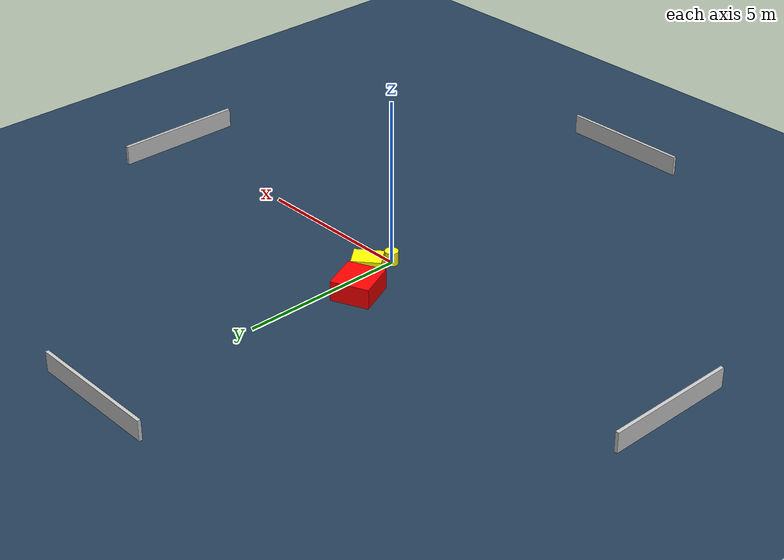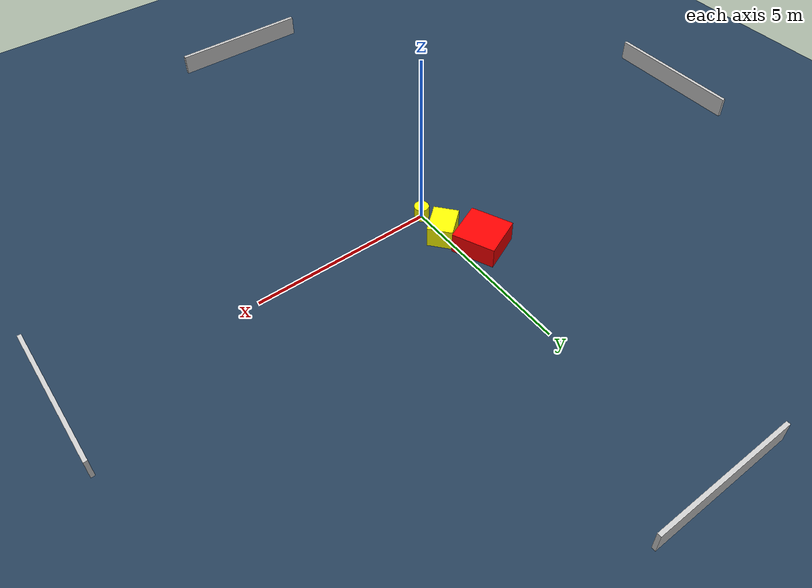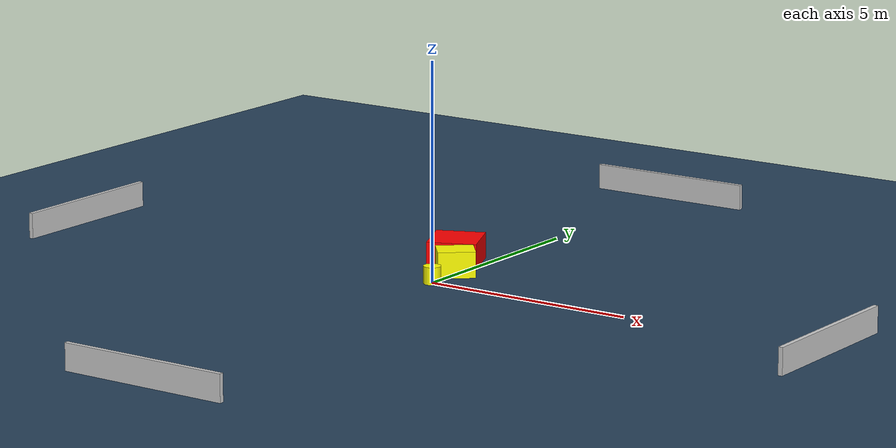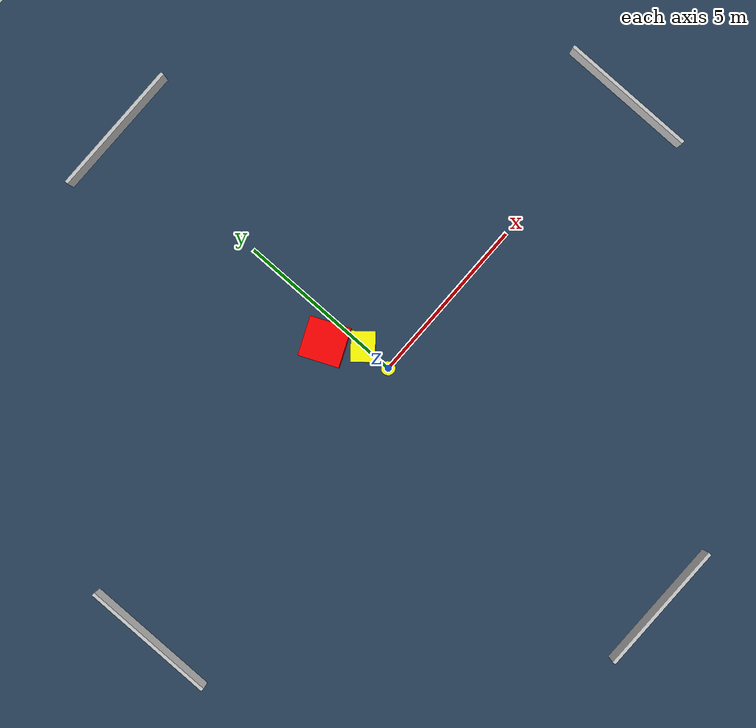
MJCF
<?xml version="1.0" ?>
<mujoco model="generated_environment">
  <option timestep="0.01" integrator="RK4" cone="elliptic"/>
  <default>
    <geom density="1"/>
  </default>
  <asset>
    <texture builtin="gradient" height="3072" name="skybox" rgb1="0.3 0.5 0.7" rgb2="0 0 0" type="skybox" width="512"/>
    <texture builtin="checker" height="300" name="groundplane" rgb1="0.2 0.3 0.4" rgb2="0.1 0.2 0.3" type="2d" width="300"/>
    <material name="groundplane" reflectance="0.2" texrepeat="5 5" texture="groundplane"/>
  </asset>
  <worldbody>
    <light dir="0 0 -1" directional="true" pos="0 0 1.5"/>
    <geom condim="3" friction="0.5 0.005 0.001" material="groundplane" name="floor" pos="0 0 0" size="0 0 0.05" type="plane"/>
    <body name="walls">
      <geom name="wall_1" condim="4" pos="-10.0 0.0 0.3" rgba="0.800000011920929 0.800000011920929 0.800000011920929 1.0" size="0.05 2.0 0.3" type="box"/>
      <geom name="wall_2" condim="4" pos="10.0 0.0 0.3" rgba="0.800000011920929 0.800000011920929 0.800000011920929 1.0" size="0.05 2.0 0.3" type="box"/>
      <geom name="wall_3" condim="4" pos="0.0 -10.0 0.3" rgba="0.800000011920929 0.800000011920929 0.800000011920929 1.0" size="2.0 0.05 0.3" type="box"/>
      <geom name="wall_4" condim="4" pos="0.0 10.0 0.3" rgba="0.800000011920929 0.800000011920929 0.800000011920929 1.0" size="2.0 0.05 0.3" type="box"/>
    </body>
    <body name="robot">
      <joint name="joint_x" type="slide" pos="0 0 0" axis="1 0 0"/>
      <joint name="joint_y" type="slide" pos="0 0 0" axis="0 1 0"/>
      <geom name="robot" type="cylinder" pos="0.0 0.0 0.2" size="0.2 0.2 0.0" mass="5.0" friction="1.0 0.005 0.0001" condim="4" rgba="1.0 1.0 0.0 1.0"/>
    </body>
    <body name="obstacle_1_movable">
      <geom name="obstacle_1_movable" condim="4" pos="-0.008838217486348773 0.9132163907805085 0.3" euler="0 0 219.8598154181096" friction="0.0 0.005 0.001" rgba="1.0 1.0 0.0 1.0" size="0.42798361281872555 0.33957608115968096 0.3" type="box" mass="0.1"/>
      <joint type="free"/>
    </body>
    <body name="obstacle_2_static">
      <geom name="obstacle_2_static" condim="4" pos="-0.6072505164389813 1.796235017192164 0.3" euler="0 0 23.819835980658585" friction="0.0 0.005 0.001" rgba="1.0 0.0 0.0 1.0" size="0.5708375368685361 0.5902450046425687 0.3" type="box"/>
    </body>
  </worldbody>
  <actuator>
    <motor name="actuator_x" joint="joint_x" gear="1" ctrlrange="-1 1"/>
    <motor name="actuator_y" joint="joint_y" gear="1" ctrlrange="-1 1"/>
  </actuator>
</mujoco>
